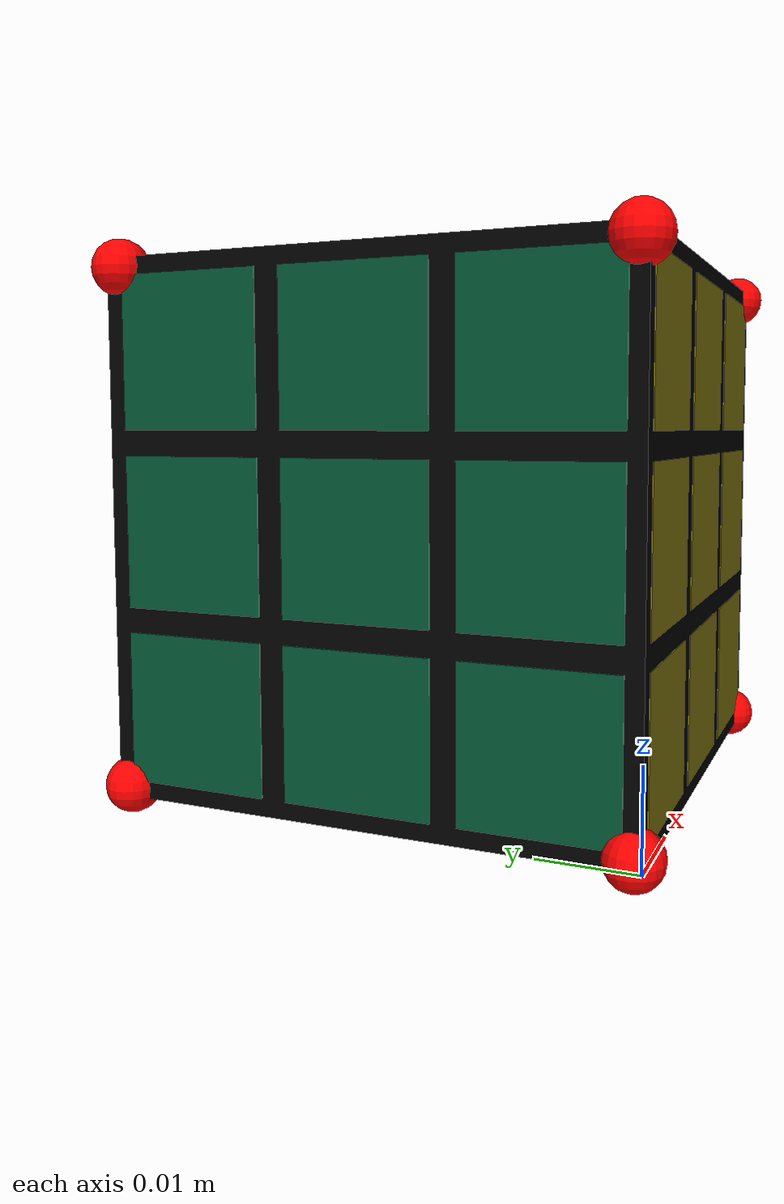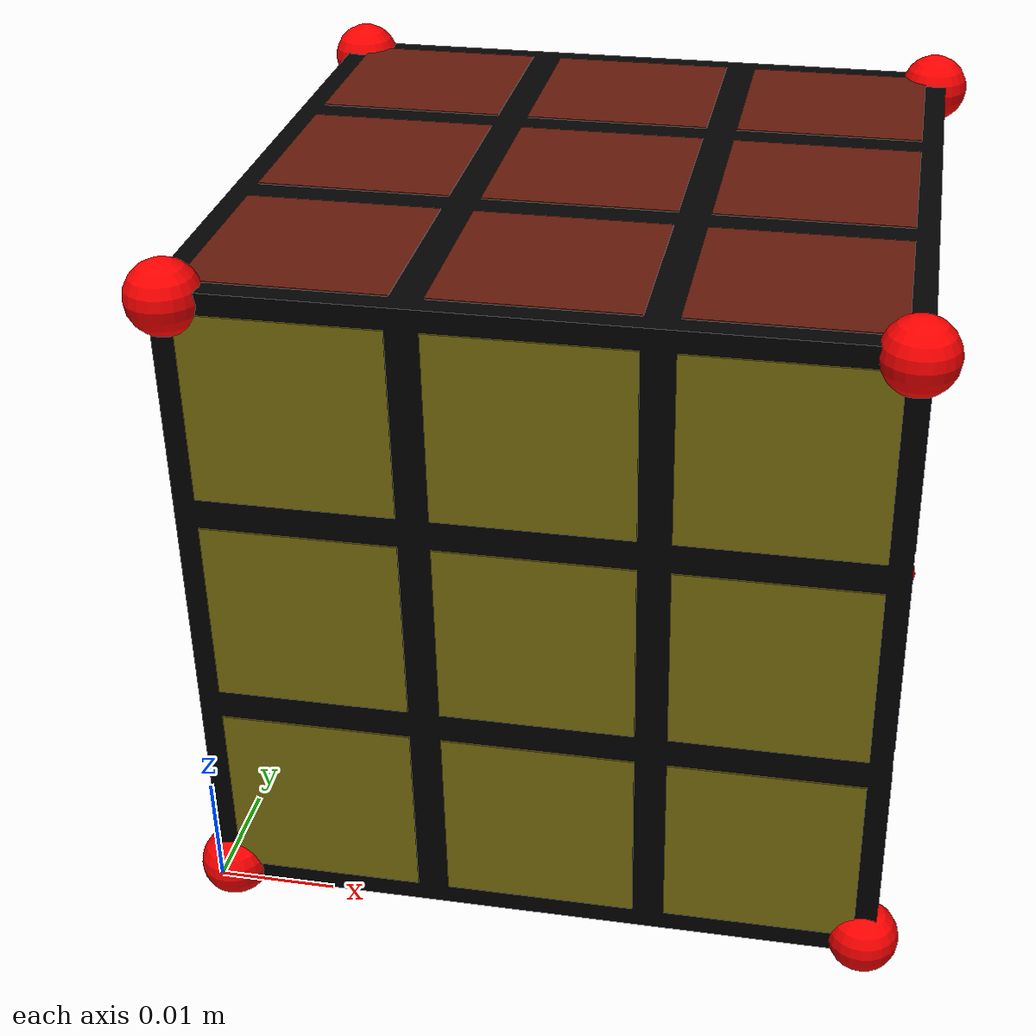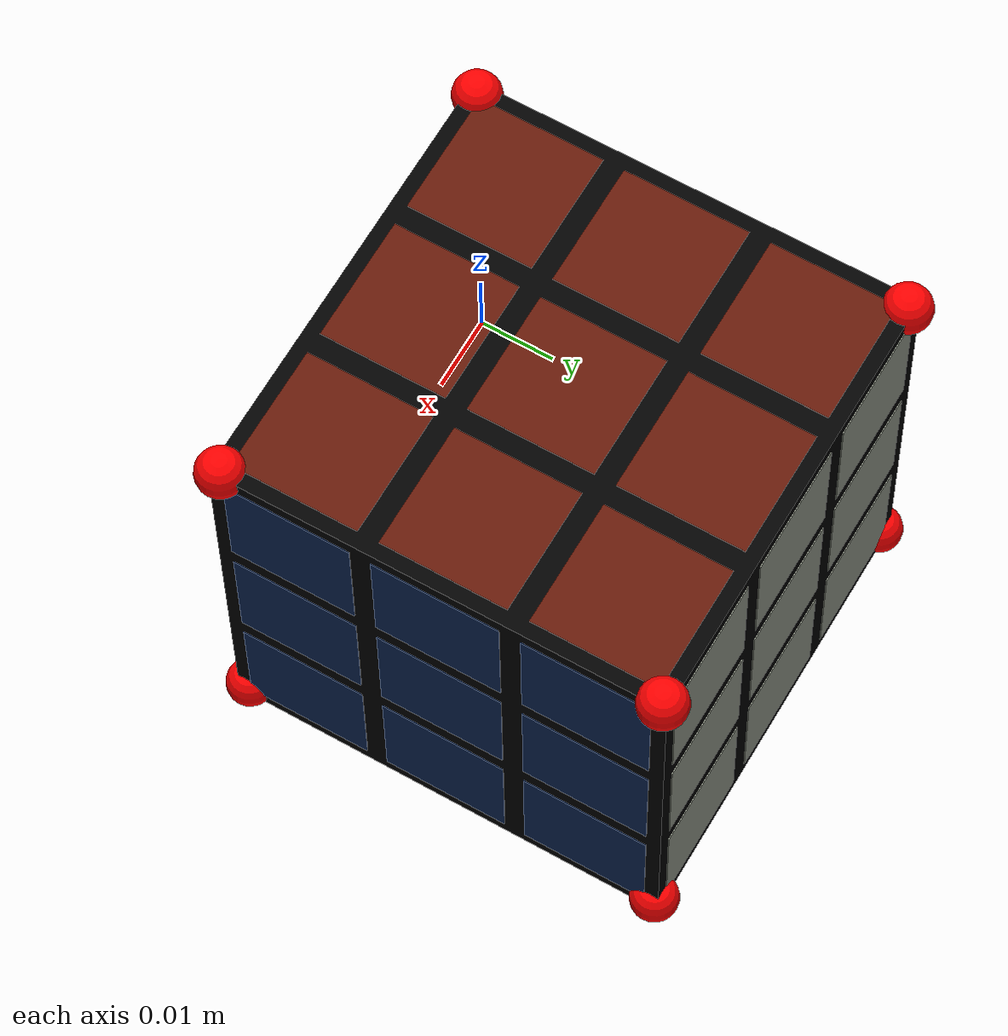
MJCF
<mujoco model="rubik-v1.50">
    <asset>
        <material name="MatRubik" specular="1" shininess=".3" rgba="0 0 0 1"/>
        <material name="RedSticker_0_0" specular=".3" shininess=".3" rgba="0.3843137254901961 0.09411764705882353 0.03529411764705882 1" />
        <material name="RedSticker_0_1" specular=".3" shininess=".3" rgba="0.3843137254901961 0.09411764705882353 0.03529411764705882 1" />
        <material name="RedSticker_0_2" specular=".3" shininess=".3" rgba="0.3843137254901961 0.09411764705882353 0.03529411764705882 1" />
        <material name="RedSticker_1_0" specular=".3" shininess=".3" rgba="0.3843137254901961 0.09411764705882353 0.03529411764705882 1" />
        <material name="RedSticker_1_1" specular=".3" shininess=".3" rgba="0.3843137254901961 0.09411764705882353 0.03529411764705882 1" />
        <material name="RedSticker_1_2" specular=".3" shininess=".3" rgba="0.3843137254901961 0.09411764705882353 0.03529411764705882 1" />
        <material name="RedSticker_2_0" specular=".3" shininess=".3" rgba="0.3843137254901961 0.09411764705882353 0.03529411764705882 1" />
        <material name="RedSticker_2_1" specular=".3" shininess=".3" rgba="0.3843137254901961 0.09411764705882353 0.03529411764705882 1" />
        <material name="RedSticker_2_2" specular=".3" shininess=".3" rgba="0.3843137254901961 0.09411764705882353 0.03529411764705882 1" />

        <material name="OrangeSticker_0_0" specular=".3" shininess=".3" rgba="0.5137254901960784 0.2823529411764706 0.01568627450980392 1" />
        <material name="OrangeSticker_0_1" specular=".3" shininess=".3" rgba="0.5137254901960784 0.2823529411764706 0.01568627450980392 1" />
        <material name="OrangeSticker_0_2" specular=".3" shininess=".3" rgba="0.5137254901960784 0.2823529411764706 0.01568627450980392 1" />
        <material name="OrangeSticker_1_0" specular=".3" shininess=".3" rgba="0.5137254901960784 0.2823529411764706 0.01568627450980392 1" />
        <material name="OrangeSticker_1_1" specular=".3" shininess=".3" rgba="0.5137254901960784 0.2823529411764706 0.01568627450980392 1" />
        <material name="OrangeSticker_1_2" specular=".3" shininess=".3" rgba="0.5137254901960784 0.2823529411764706 0.01568627450980392 1" />
        <material name="OrangeSticker_2_0" specular=".3" shininess=".3" rgba="0.5137254901960784 0.2823529411764706 0.01568627450980392 1" />
        <material name="OrangeSticker_2_1" specular=".3" shininess=".3" rgba="0.5137254901960784 0.2823529411764706 0.01568627450980392 1" />
        <material name="OrangeSticker_2_2" specular=".3" shininess=".3" rgba="0.5137254901960784 0.2823529411764706 0.01568627450980392 1" />

        <material name="YellowSticker_0_0" specular=".3" shininess=".3" rgba="0.5019607843137255 0.4549019607843137 0.050980392156862744 1" />
        <material name="YellowSticker_0_1" specular=".3" shininess=".3" rgba="0.5019607843137255 0.4549019607843137 0.050980392156862744 1" />
        <material name="YellowSticker_0_2" specular=".3" shininess=".3" rgba="0.5019607843137255 0.4549019607843137 0.050980392156862744 1" />
        <material name="YellowSticker_1_0" specular=".3" shininess=".3" rgba="0.5019607843137255 0.4549019607843137 0.050980392156862744 1" />
        <material name="YellowSticker_1_1" specular=".3" shininess=".3" rgba="0.5019607843137255 0.4549019607843137 0.050980392156862744 1" />
        <material name="YellowSticker_1_2" specular=".3" shininess=".3" rgba="0.5019607843137255 0.4549019607843137 0.050980392156862744 1" />
        <material name="YellowSticker_2_0" specular=".3" shininess=".3" rgba="0.5019607843137255 0.4549019607843137 0.050980392156862744 1" />
        <material name="YellowSticker_2_1" specular=".3" shininess=".3" rgba="0.5019607843137255 0.4549019607843137 0.050980392156862744 1" />
        <material name="YellowSticker_2_2" specular=".3" shininess=".3" rgba="0.5019607843137255 0.4549019607843137 0.050980392156862744 1" />

        <material name="GreenSticker_0_0" specular=".3" shininess=".3" rgba="0.00784313725490196 0.3137254901960784 0.19215686274509805 1" />
        <material name="GreenSticker_0_1" specular=".3" shininess=".3" rgba="0.00784313725490196 0.3137254901960784 0.19215686274509805 1" />
        <material name="GreenSticker_0_2" specular=".3" shininess=".3" rgba="0.00784313725490196 0.3137254901960784 0.19215686274509805 1" />
        <material name="GreenSticker_1_0" specular=".3" shininess=".3" rgba="0.00784313725490196 0.3137254901960784 0.19215686274509805 1" />
        <material name="GreenSticker_1_1" specular=".3" shininess=".3" rgba="0.00784313725490196 0.3137254901960784 0.19215686274509805 1" />
        <material name="GreenSticker_1_2" specular=".3" shininess=".3" rgba="0.00784313725490196 0.3137254901960784 0.19215686274509805 1" />
        <material name="GreenSticker_2_0" specular=".3" shininess=".3" rgba="0.00784313725490196 0.3137254901960784 0.19215686274509805 1" />
        <material name="GreenSticker_2_1" specular=".3" shininess=".3" rgba="0.00784313725490196 0.3137254901960784 0.19215686274509805 1" />
        <material name="GreenSticker_2_2" specular=".3" shininess=".3" rgba="0.00784313725490196 0.3137254901960784 0.19215686274509805 1" />

        <material name="WhiteSticker_0_0" specular=".3" shininess=".3" rgba="0.596078431372549 0.6196078431372549 0.5607843137254902 1" />
        <material name="WhiteSticker_0_1" specular=".3" shininess=".3" rgba="0.596078431372549 0.6196078431372549 0.5607843137254902 1" />
        <material name="WhiteSticker_0_2" specular=".3" shininess=".3" rgba="0.596078431372549 0.6196078431372549 0.5607843137254902 1" />
        <material name="WhiteSticker_1_0" specular=".3" shininess=".3" rgba="0.596078431372549 0.6196078431372549 0.5607843137254902 1" />
        <material name="WhiteSticker_1_1" specular=".3" shininess=".3" rgba="0.596078431372549 0.6196078431372549 0.5607843137254902 1" />
        <material name="WhiteSticker_1_2" specular=".3" shininess=".3" rgba="0.596078431372549 0.6196078431372549 0.5607843137254902 1" />
        <material name="WhiteSticker_2_0" specular=".3" shininess=".3" rgba="0.596078431372549 0.6196078431372549 0.5607843137254902 1" />
        <material name="WhiteSticker_2_1" specular=".3" shininess=".3" rgba="0.596078431372549 0.6196078431372549 0.5607843137254902 1" />
        <material name="WhiteSticker_2_2" specular=".3" shininess=".3" rgba="0.596078431372549 0.6196078431372549 0.5607843137254902 1" />

        <material name="BlueSticker_0_0" specular=".3" shininess=".3" rgba="0.043137254901960784 0.13333333333333333 0.30980392156862746 1" />
        <material name="BlueSticker_0_1" specular=".3" shininess=".3" rgba="0.043137254901960784 0.13333333333333333 0.30980392156862746 1" />
        <material name="BlueSticker_0_2" specular=".3" shininess=".3" rgba="0.043137254901960784 0.13333333333333333 0.30980392156862746 1" />
        <material name="BlueSticker_1_0" specular=".3" shininess=".3" rgba="0.043137254901960784 0.13333333333333333 0.30980392156862746 1" />
        <material name="BlueSticker_1_1" specular=".3" shininess=".3" rgba="0.043137254901960784 0.13333333333333333 0.30980392156862746 1" />
        <material name="BlueSticker_1_2" specular=".3" shininess=".3" rgba="0.043137254901960784 0.13333333333333333 0.30980392156862746 1" />
        <material name="BlueSticker_2_0" specular=".3" shininess=".3" rgba="0.043137254901960784 0.13333333333333333 0.30980392156862746 1" />
        <material name="BlueSticker_2_1" specular=".3" shininess=".3" rgba="0.043137254901960784 0.13333333333333333 0.30980392156862746 1" />
        <material name="BlueSticker_2_2" specular=".3" shininess=".3" rgba="0.043137254901960784 0.13333333333333333 0.30980392156862746 1" />

        <material name="CubePS_0_Material" specular="1" shininess=".3" rgba="1 0 0 1" emission="1." />
        <material name="CubePS_1_Material" specular="1" shininess=".3" rgba="1 0 0 1" emission="1." />
        <material name="CubePS_2_Material" specular="1" shininess=".3" rgba="1 0 0 1" emission="1." />
        <material name="CubePS_3_Material" specular="1" shininess=".3" rgba="1 0 0 1" emission="1." />
        <material name="CubePS_4_Material" specular="1" shininess=".3" rgba="1 0 0 1" emission="1." />
        <material name="CubePS_5_Material" specular="1" shininess=".3" rgba="1 0 0 1" emission="1." />
        <material name="CubePS_6_Material" specular="1" shininess=".3" rgba="1 0 0 1" emission="1." />
        <material name="CubePS_7_Material" specular="1" shininess=".3" rgba="1 0 0 1" emission="1." />

    </asset>

    <worldbody>
        <body name="middle" pos="0.0285 0.0285 0.0285">
            <geom name="middle" type="box" size="0.0285 0.0285 0.0285" material="MatRubik" condim="4"/>
            <site name="center" pos="0 0 0" rgba="1 0 0 1" size="0.01 0.01 0.01"></site>
            <joint name="cube_tx" type="slide" axis="1 0 0" limited="false"/>
            <joint name="cube_ty" type="slide" axis="0 1 0" limited="false"/>
            <joint name="cube_tz" type="slide" axis="0 0 1" limited="false"/>
            <joint name="cube_rot" type="ball" limited="false"/>
            <body name="sticker_top_0_0" pos="-0.018666666666666665 -0.018666666666666665 0.0285">
                <geom name="sticker_top_0_0" type="box" size="0.008 0.008 .0001" conaffinity="0" contype="0" material="RedSticker_0_0"/>
            </body>
            <body name="sticker_top_0_1" pos="-0.018666666666666665 -1.734723475976807e-18 0.0285">
                <geom name="sticker_top_0_1" type="box" size="0.008 0.008 .0001" conaffinity="0" contype="0" material="RedSticker_0_1"/>
            </body>
            <body name="sticker_top_0_2" pos="-0.018666666666666665 0.01866666666666667 0.0285">
                <geom name="sticker_top_0_2" type="box" size="0.008 0.008 .0001" conaffinity="0" contype="0" material="RedSticker_0_2"/>
            </body>
            <body name="sticker_top_1_0" pos="-1.734723475976807e-18 -0.018666666666666665 0.0285">
                <geom name="sticker_top_1_0" type="box" size="0.008 0.008 .0001" conaffinity="0" contype="0" material="RedSticker_1_0"/>
            </body>
            <body name="sticker_top_1_1" pos="-1.734723475976807e-18 -1.734723475976807e-18 0.0285">
                <geom name="sticker_top_1_1" type="box" size="0.008 0.008 .0001" conaffinity="0" contype="0" material="RedSticker_1_1"/>
            </body>
            <body name="sticker_top_1_2" pos="-1.734723475976807e-18 0.01866666666666667 0.0285">
                <geom name="sticker_top_1_2" type="box" size="0.008 0.008 .0001" conaffinity="0" contype="0" material="RedSticker_1_2"/>
            </body>
            <body name="sticker_top_2_0" pos="0.01866666666666667 -0.018666666666666665 0.0285">
                <geom name="sticker_top_2_0" type="box" size="0.008 0.008 .0001" conaffinity="0" contype="0" material="RedSticker_2_0"/>
            </body>
            <body name="sticker_top_2_1" pos="0.01866666666666667 -1.734723475976807e-18 0.0285">
                <geom name="sticker_top_2_1" type="box" size="0.008 0.008 .0001" conaffinity="0" contype="0" material="RedSticker_2_1"/>
            </body>
            <body name="sticker_top_2_2" pos="0.01866666666666667 0.01866666666666667 0.0285">
                <geom name="sticker_top_2_2" type="box" size="0.008 0.008 .0001" conaffinity="0" contype="0" material="RedSticker_2_2"/>
            </body>

            <body name="sticker_bottom_0_0" pos="-0.018666666666666665 -0.018666666666666665 -0.0285">
                <geom name="sticker_bottom_0_0" type="box" size="0.008 0.008 .0001" conaffinity="0" contype="0" material="OrangeSticker_0_0"/>
            </body>
            <body name="sticker_bottom_0_1" pos="-0.018666666666666665 -1.734723475976807e-18 -0.0285">
                <geom name="sticker_bottom_0_1" type="box" size="0.008 0.008 .0001" conaffinity="0" contype="0" material="OrangeSticker_0_1"/>
            </body>
            <body name="sticker_bottom_0_2" pos="-0.018666666666666665 0.01866666666666667 -0.0285">
                <geom name="sticker_bottom_0_2" type="box" size="0.008 0.008 .0001" conaffinity="0" contype="0" material="OrangeSticker_0_2"/>
            </body>
            <body name="sticker_bottom_1_0" pos="-1.734723475976807e-18 -0.018666666666666665 -0.0285">
                <geom name="sticker_bottom_1_0" type="box" size="0.008 0.008 .0001" conaffinity="0" contype="0" material="OrangeSticker_1_0"/>
            </body>
            <body name="sticker_bottom_1_1" pos="-1.734723475976807e-18 -1.734723475976807e-18 -0.0285">
                <geom name="sticker_bottom_1_1" type="box" size="0.008 0.008 .0001" conaffinity="0" contype="0" material="OrangeSticker_1_1"/>
            </body>
            <body name="sticker_bottom_1_2" pos="-1.734723475976807e-18 0.01866666666666667 -0.0285">
                <geom name="sticker_bottom_1_2" type="box" size="0.008 0.008 .0001" conaffinity="0" contype="0" material="OrangeSticker_1_2"/>
            </body>
            <body name="sticker_bottom_2_0" pos="0.01866666666666667 -0.018666666666666665 -0.0285">
                <geom name="sticker_bottom_2_0" type="box" size="0.008 0.008 .0001" conaffinity="0" contype="0" material="OrangeSticker_2_0"/>
            </body>
            <body name="sticker_bottom_2_1" pos="0.01866666666666667 -1.734723475976807e-18 -0.0285">
                <geom name="sticker_bottom_2_1" type="box" size="0.008 0.008 .0001" conaffinity="0" contype="0" material="OrangeSticker_2_1"/>
            </body>
            <body name="sticker_bottom_2_2" pos="0.01866666666666667 0.01866666666666667 -0.0285">
                <geom name="sticker_bottom_2_2" type="box" size="0.008 0.008 .0001" conaffinity="0" contype="0" material="OrangeSticker_2_2"/>
            </body>

            <body name="sticker_side1_0_0" pos="-0.018666666666666665  -0.0285 -0.018666666666666665">
                <geom name="sticker_side1_0_0" type="box" size="0.008 .0001 0.008" conaffinity="0" contype="0" material="YellowSticker_0_0"/>
            </body>
            <body name="sticker_side1_0_1" pos="-0.018666666666666665  -0.0285 -1.734723475976807e-18">
                <geom name="sticker_side1_0_1" type="box" size="0.008 .0001 0.008" conaffinity="0" contype="0" material="YellowSticker_0_1"/>
            </body>
            <body name="sticker_side1_0_2" pos="-0.018666666666666665  -0.0285 0.01866666666666667">
                <geom name="sticker_side1_0_2" type="box" size="0.008 .0001 0.008" conaffinity="0" contype="0" material="YellowSticker_0_2"/>
            </body>
            <body name="sticker_side1_1_0" pos="-1.734723475976807e-18  -0.0285 -0.018666666666666665">
                <geom name="sticker_side1_1_0" type="box" size="0.008 .0001 0.008" conaffinity="0" contype="0" material="YellowSticker_1_0"/>
            </body>
            <body name="sticker_side1_1_1" pos="-1.734723475976807e-18  -0.0285 -1.734723475976807e-18">
                <geom name="sticker_side1_1_1" type="box" size="0.008 .0001 0.008" conaffinity="0" contype="0" material="YellowSticker_1_1"/>
            </body>
            <body name="sticker_side1_1_2" pos="-1.734723475976807e-18  -0.0285 0.01866666666666667">
                <geom name="sticker_side1_1_2" type="box" size="0.008 .0001 0.008" conaffinity="0" contype="0" material="YellowSticker_1_2"/>
            </body>
            <body name="sticker_side1_2_0" pos="0.01866666666666667  -0.0285 -0.018666666666666665">
                <geom name="sticker_side1_2_0" type="box" size="0.008 .0001 0.008" conaffinity="0" contype="0" material="YellowSticker_2_0"/>
            </body>
            <body name="sticker_side1_2_1" pos="0.01866666666666667  -0.0285 -1.734723475976807e-18">
                <geom name="sticker_side1_2_1" type="box" size="0.008 .0001 0.008" conaffinity="0" contype="0" material="YellowSticker_2_1"/>
            </body>
            <body name="sticker_side1_2_2" pos="0.01866666666666667  -0.0285 0.01866666666666667">
                <geom name="sticker_side1_2_2" type="box" size="0.008 .0001 0.008" conaffinity="0" contype="0" material="YellowSticker_2_2"/>
            </body>

            <body name="sticker_side2_0_0" pos="-0.0285 -0.018666666666666665 -0.018666666666666665">
                <geom name="sticker_side2_0_0" type="box" size=".0001 0.008 0.008" conaffinity="0" contype="0" material="GreenSticker_0_0"/>
            </body>
            <body name="sticker_side2_0_1" pos="-0.0285 -0.018666666666666665 -1.734723475976807e-18">
                <geom name="sticker_side2_0_1" type="box" size=".0001 0.008 0.008" conaffinity="0" contype="0" material="GreenSticker_0_1"/>
            </body>
            <body name="sticker_side2_0_2" pos="-0.0285 -0.018666666666666665 0.01866666666666667">
                <geom name="sticker_side2_0_2" type="box" size=".0001 0.008 0.008" conaffinity="0" contype="0" material="GreenSticker_0_2"/>
            </body>
            <body name="sticker_side2_1_0" pos="-0.0285 -1.734723475976807e-18 -0.018666666666666665">
                <geom name="sticker_side2_1_0" type="box" size=".0001 0.008 0.008" conaffinity="0" contype="0" material="GreenSticker_1_0"/>
            </body>
            <body name="sticker_side2_1_1" pos="-0.0285 -1.734723475976807e-18 -1.734723475976807e-18">
                <geom name="sticker_side2_1_1" type="box" size=".0001 0.008 0.008" conaffinity="0" contype="0" material="GreenSticker_1_1"/>
            </body>
            <body name="sticker_side2_1_2" pos="-0.0285 -1.734723475976807e-18 0.01866666666666667">
                <geom name="sticker_side2_1_2" type="box" size=".0001 0.008 0.008" conaffinity="0" contype="0" material="GreenSticker_1_2"/>
            </body>
            <body name="sticker_side2_2_0" pos="-0.0285 0.01866666666666667 -0.018666666666666665">
                <geom name="sticker_side2_2_0" type="box" size=".0001 0.008 0.008" conaffinity="0" contype="0" material="GreenSticker_2_0"/>
            </body>
            <body name="sticker_side2_2_1" pos="-0.0285 0.01866666666666667 -1.734723475976807e-18">
                <geom name="sticker_side2_2_1" type="box" size=".0001 0.008 0.008" conaffinity="0" contype="0" material="GreenSticker_2_1"/>
            </body>
            <body name="sticker_side2_2_2" pos="-0.0285 0.01866666666666667 0.01866666666666667">
                <geom name="sticker_side2_2_2" type="box" size=".0001 0.008 0.008" conaffinity="0" contype="0" material="GreenSticker_2_2"/>
            </body>

            <body name="sticker_side3_0_0" pos="-0.018666666666666665 0.0285 -0.018666666666666665">
                <geom name="sticker_side3_0_0" type="box" size="0.008 .0001 0.008" conaffinity="0" contype="0" material="WhiteSticker_0_0"/>
            </body>
            <body name="sticker_side3_0_1" pos="-0.018666666666666665 0.0285 -1.734723475976807e-18">
                <geom name="sticker_side3_0_1" type="box" size="0.008 .0001 0.008" conaffinity="0" contype="0" material="WhiteSticker_0_1"/>
            </body>
            <body name="sticker_side3_0_2" pos="-0.018666666666666665 0.0285 0.01866666666666667">
                <geom name="sticker_side3_0_2" type="box" size="0.008 .0001 0.008" conaffinity="0" contype="0" material="WhiteSticker_0_2"/>
            </body>
            <body name="sticker_side3_1_0" pos="-1.734723475976807e-18 0.0285 -0.018666666666666665">
                <geom name="sticker_side3_1_0" type="box" size="0.008 .0001 0.008" conaffinity="0" contype="0" material="WhiteSticker_1_0"/>
            </body>
            <body name="sticker_side3_1_1" pos="-1.734723475976807e-18 0.0285 -1.734723475976807e-18">
                <geom name="sticker_side3_1_1" type="box" size="0.008 .0001 0.008" conaffinity="0" contype="0" material="WhiteSticker_1_1"/>
            </body>
            <body name="sticker_side3_1_2" pos="-1.734723475976807e-18 0.0285 0.01866666666666667">
                <geom name="sticker_side3_1_2" type="box" size="0.008 .0001 0.008" conaffinity="0" contype="0" material="WhiteSticker_1_2"/>
            </body>
            <body name="sticker_side3_2_0" pos="0.01866666666666667 0.0285 -0.018666666666666665">
                <geom name="sticker_side3_2_0" type="box" size="0.008 .0001 0.008" conaffinity="0" contype="0" material="WhiteSticker_2_0"/>
            </body>
            <body name="sticker_side3_2_1" pos="0.01866666666666667 0.0285 -1.734723475976807e-18">
                <geom name="sticker_side3_2_1" type="box" size="0.008 .0001 0.008" conaffinity="0" contype="0" material="WhiteSticker_2_1"/>
            </body>
            <body name="sticker_side3_2_2" pos="0.01866666666666667 0.0285 0.01866666666666667">
                <geom name="sticker_side3_2_2" type="box" size="0.008 .0001 0.008" conaffinity="0" contype="0" material="WhiteSticker_2_2"/>
            </body>

            <body name="sticker_side4_0_0" pos="0.0285 -0.018666666666666665 -0.018666666666666665">
                <geom name="sticker_side4_0_0" type="box" size=".0001 0.008 0.008" conaffinity="0" contype="0" material="BlueSticker_0_0"/>
            </body>
            <body name="sticker_side4_0_1" pos="0.0285 -0.018666666666666665 -1.734723475976807e-18">
                <geom name="sticker_side4_0_1" type="box" size=".0001 0.008 0.008" conaffinity="0" contype="0" material="BlueSticker_0_1"/>
            </body>
            <body name="sticker_side4_0_2" pos="0.0285 -0.018666666666666665 0.01866666666666667">
                <geom name="sticker_side4_0_2" type="box" size=".0001 0.008 0.008" conaffinity="0" contype="0" material="BlueSticker_0_2"/>
            </body>
            <body name="sticker_side4_1_0" pos="0.0285 -1.734723475976807e-18 -0.018666666666666665">
                <geom name="sticker_side4_1_0" type="box" size=".0001 0.008 0.008" conaffinity="0" contype="0" material="BlueSticker_1_0"/>
            </body>
            <body name="sticker_side4_1_1" pos="0.0285 -1.734723475976807e-18 -1.734723475976807e-18">
                <geom name="sticker_side4_1_1" type="box" size=".0001 0.008 0.008" conaffinity="0" contype="0" material="BlueSticker_1_1"/>
            </body>
            <body name="sticker_side4_1_2" pos="0.0285 -1.734723475976807e-18 0.01866666666666667">
                <geom name="sticker_side4_1_2" type="box" size=".0001 0.008 0.008" conaffinity="0" contype="0" material="BlueSticker_1_2"/>
            </body>
            <body name="sticker_side4_2_0" pos="0.0285 0.01866666666666667 -0.018666666666666665">
                <geom name="sticker_side4_2_0" type="box" size=".0001 0.008 0.008" conaffinity="0" contype="0" material="BlueSticker_2_0"/>
            </body>
            <body name="sticker_side4_2_1" pos="0.0285 0.01866666666666667 -1.734723475976807e-18">
                <geom name="sticker_side4_2_1" type="box" size=".0001 0.008 0.008" conaffinity="0" contype="0" material="BlueSticker_2_1"/>
            </body>
            <body name="sticker_side4_2_2" pos="0.0285 0.01866666666666667 0.01866666666666667">
                <geom name="sticker_side4_2_2" type="box" size=".0001 0.008 0.008" conaffinity="0" contype="0" material="BlueSticker_2_2"/>
            </body>

            <site name="CubePS_0" pos="-0.0275 -0.0275 -0.0275" size="0.003" material="CubePS_0_Material" rgba="1 0 0 1"/>
            <site name="CubePS_1" pos="-0.0275 -0.0275 0.0275" size="0.003" material="CubePS_1_Material" rgba="1 0 0 1"/>
            <site name="CubePS_2" pos="-0.0275 0.0275 -0.0275" size="0.003" material="CubePS_2_Material" rgba="1 0 0 1"/>
            <site name="CubePS_3" pos="-0.0275 0.0275 0.0275" size="0.003" material="CubePS_3_Material" rgba="1 0 0 1"/>
            <site name="CubePS_4" pos="0.0275 -0.0275 -0.0275" size="0.003" material="CubePS_4_Material" rgba="1 0 0 1"/>
            <site name="CubePS_5" pos="0.0275 -0.0275 0.0275" size="0.003" material="CubePS_5_Material" rgba="1 0 0 1"/>
            <site name="CubePS_6" pos="0.0275 0.0275 -0.0275" size="0.003" material="CubePS_6_Material" rgba="1 0 0 1"/>
            <site name="CubePS_7" pos="0.0275 0.0275 0.0275" size="0.003" material="CubePS_7_Material" rgba="1 0 0 1"/>

        </body>
        <body name="annotation:outer_bound" pos="0.0285 0.0285 0.0285">
            <geom conaffinity="0" contype="0" mass="0" pos="0 0 0" rgba="0.417022 0.720324 0.000114 0.1" size="0.0285 0.0285 0.0285" type="box"></geom>
        </body>
    </worldbody>

</mujoco>
